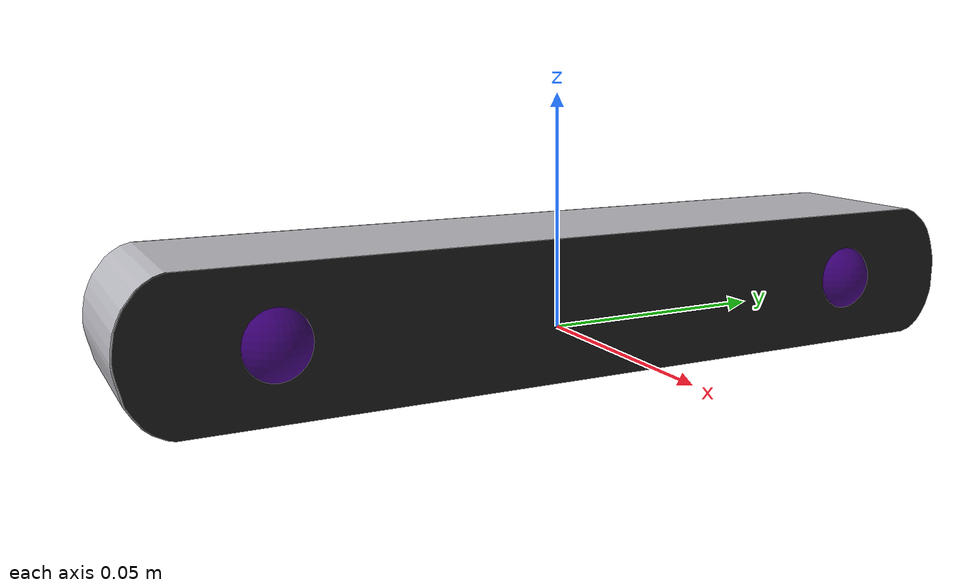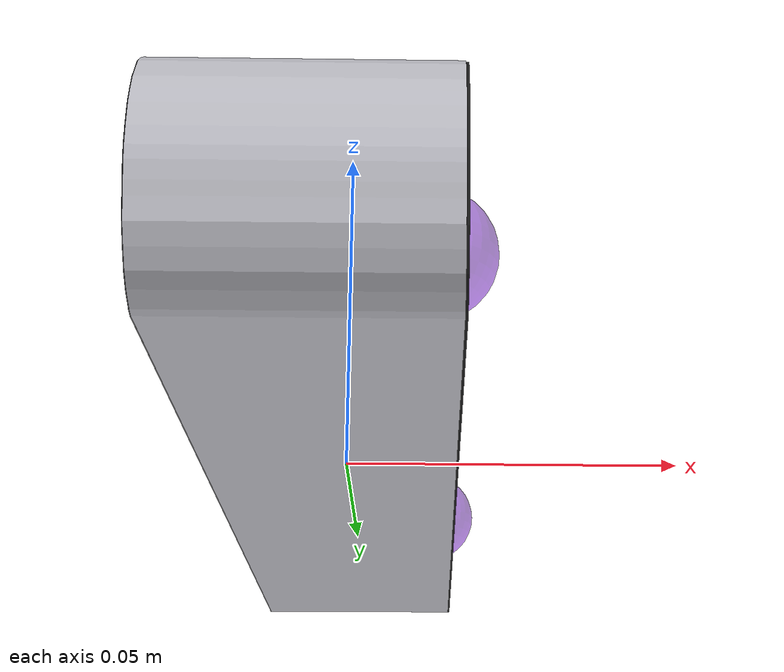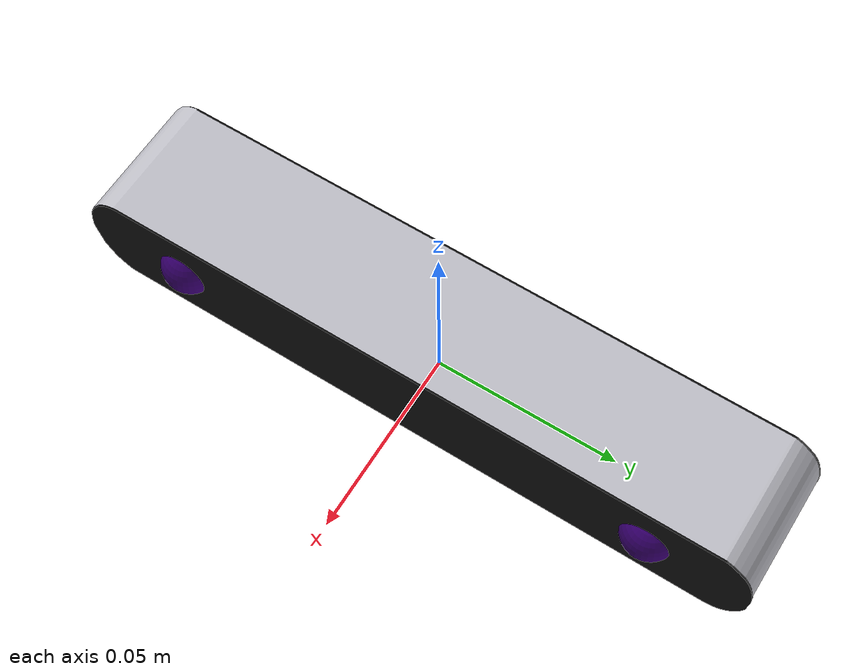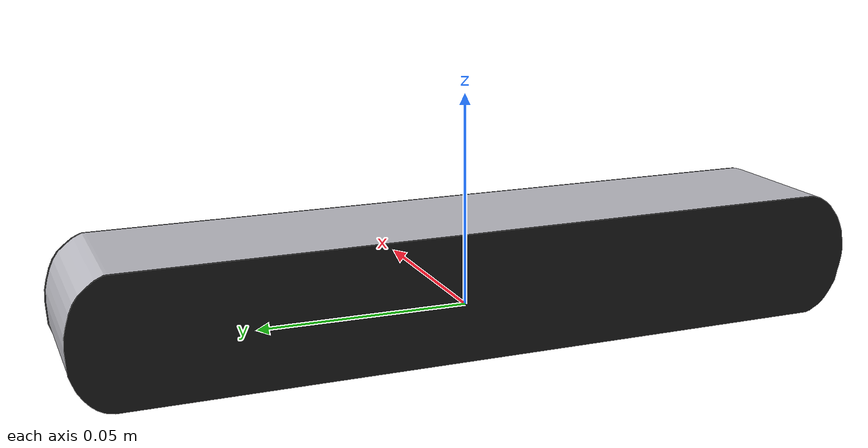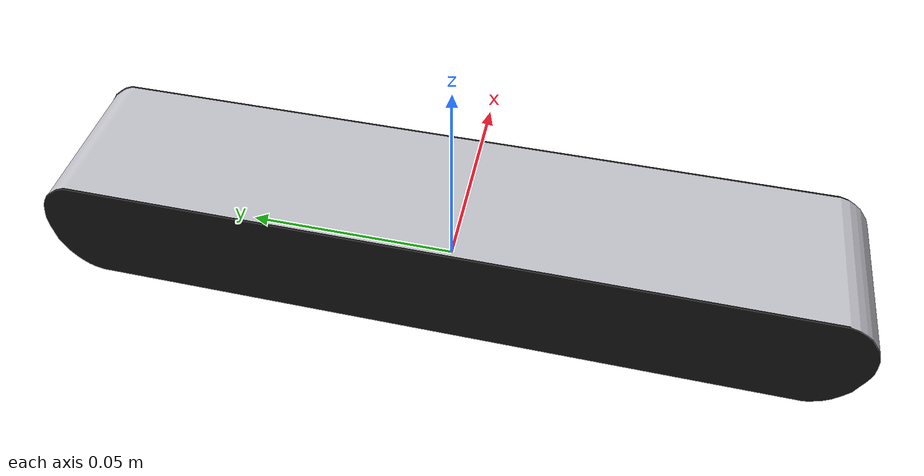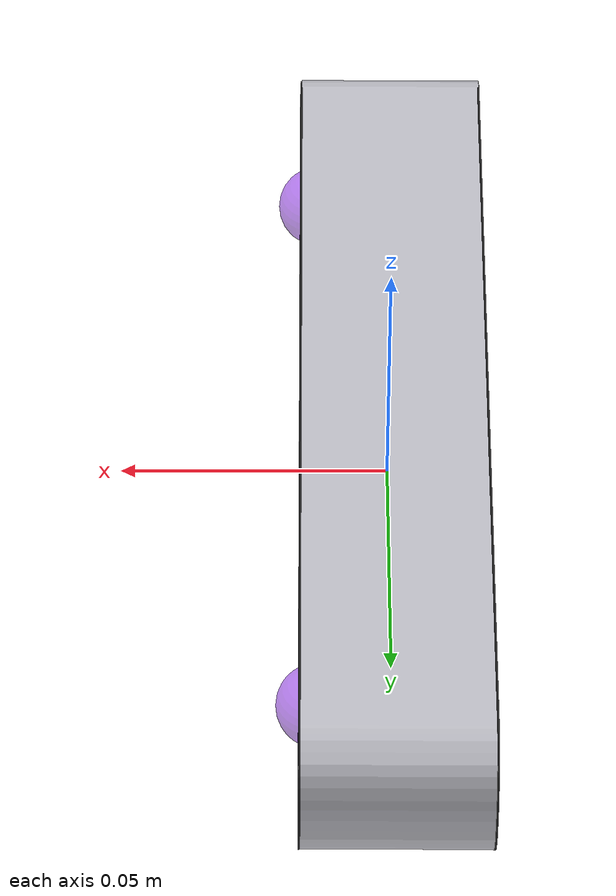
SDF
<?xml version='1.0'?>
<sdf version='1.5'>
  <model name='Zed_dummy'>
  <pose>0 0 0.008247 -1.57 0 -1.57</pose>
    <link name='frame'>
<inertial>
 	 <mass>0.342</mass>
	   <inertia>
	     <ixx>0.000056687</ixx>
	     <iyy>0.00089846</iyy>
	     <izz>0.00090385</izz>
    	     <ixy>0</ixy>
	     <ixz>0</ixz>
	     <iyz>0</iyz>
	   </inertia>
</inertial>
	<pose frame=''>0 0.008 -0.018575 0 -0 0</pose>
      <visual name='visual'>
         <geometry>
          <mesh>
            <uri>model://Zed_dummy/meshes/frame.dae</uri>
            <scale>1 1 1</scale>
          </mesh>
        </geometry>
     <material>
          <script>
            <uri>model://Zed_dummy/materials/scripts</uri>
            <uri>model://Zed_dummy/materials/textures</uri>
            <name>silver_zed</name>
          </script>
        </material>
        <cast_shadows>1</cast_shadows>
        <transparency>0</transparency>
      </visual>

      <collision name='collision'>
	<pose frame=''>0 -0.008 0.017575 0 -0 0</pose>
       	  <geometry>
	    <box>
	      <size> 0.175 0.029 0.035 </size>
	    </box>
	  </geometry>
       </collision>
    </link>

    <link name='lenses'>
      <pose frame=''>0 0.008 -0.018575 0 -0 0</pose>
 	<inertial>
	<pose frame=''>0 -0.005 0.015 0 -0 0</pose>
	  <mass>0.00001</mass>
	   <inertia>
	     <ixx>0</ixx>
	     <iyy>0</iyy>
	     <izz>0</izz>
    	     <ixy>0</ixy>
	     <ixz>0</ixz>
	     <iyz>0</iyz>
	   </inertia>
	</inertial>
        <visual name='visual'>
              <geometry>
          <mesh>
            <uri>model://Zed_dummy/meshes/lenses.dae</uri>
            <scale>1 1 1</scale>
          </mesh>
        </geometry>
             <material>
          <lighting>1</lighting>
            <ambient>0.25 0 0.5 1</ambient>
          <diffuse>0.45 0 0.9 1</diffuse>
          <specular>0.01 0.01 0.01 1</specular>
          <emissive>0 0 0 1</emissive>
        </material>
        <cast_shadows>1</cast_shadows>
        <transparency>0.5</transparency>
      </visual>
      <collision name='collision'>
        <geometry>
    	 <box>
	      <size> 0.0001 0.0001 0.0001 </size>
	    </box>
        </geometry>
       </collision>

    </link>
    <link name='panel_up'>
     <pose frame=''>0 0.008 0.035727 0 -0 0</pose>
      <inertial>
	<pose frame=''>0 -0.005 -0.02 0 -0 0</pose>
	  <mass>0.00001</mass>
	   <inertia>
	     <ixx>0.0</ixx>
	     <iyy>0.0</iyy>
	     <izz>0.00</izz>
    	     <ixy>0</ixy>
	     <ixz>0</ixz>
	     <iyz>0</iyz>
	   </inertia>
	</inertial>
         <visual name='visual'>
         <geometry>
          <mesh>
            <uri>model://Zed_dummy/meshes/panel.dae</uri>
            <scale>1 1 1</scale>
          </mesh>
        </geometry>
         <material>
          <lighting>1</lighting>
          <ambient>0 0 0 1</ambient>
          <diffuse>0.1 0.1 0.1 1</diffuse>
          <specular>0.01 0.01 0.01 1</specular>
          <emissive>0 0 0 1</emissive>
          <shader type='vertex'>
            <normal_map>__default__</normal_map>
          </shader>
        </material>
        <cast_shadows>1</cast_shadows>
        <transparency>0</transparency>
      </visual>
      <collision name='collision'>

        <geometry>
           <box>
	     <size> 0.0001 0.0001 0.0001 </size>
	    </box>
        </geometry>
       </collision>
    </link>

    <link name='panel_down'>
 	<pose frame=''>0 0.008 0.001099 0 -0 0</pose>
      <inertial>
<pose frame=''>0 -0.005 -0.02 0 -0 0</pose>
         <mass>0.00001</mass>
	   <inertia>
	     <ixx>0</ixx>
	     <iyy>0</iyy>
	     <izz>0</izz>
    	     <ixy>0</ixy>
	     <ixz>0</ixz>
	     <iyz>0</iyz>
	   </inertia>
	</inertial>
        <visual name='visual'>
        <geometry>
          <mesh>
            <uri>model://Zed_dummy/meshes/panel.dae</uri>
            <scale>1 1 1</scale>
          </mesh>
        </geometry>
        <material>
          <lighting>1</lighting>
          <ambient>0 0 0 1</ambient>
          <diffuse>0.1 0.1 0.1 1</diffuse>
          <specular>0.01 0.01 0.01 1</specular>
          <emissive>0 0 0 1</emissive>
          <shader type='vertex'>
            <normal_map>__default__</normal_map>
          </shader>
        </material>
        <cast_shadows>1</cast_shadows>
        <transparency>0</transparency>
      </visual>
      <collision name='collision'>

        <geometry>
          <box>
	       <size> 0.0001 0.0001 0.0001 </size>
	    </box>
        </geometry>
       </collision>
    </link>

     <joint type="fixed" name="lenses_joint_left">
      <pose>-0.06 0 0.015 0 0 0</pose>
      <child>lenses</child>
      <parent>frame</parent>
      <axis>
        <xyz>0 0 1</xyz>
         <use_parent_model_frame>true</use_parent_model_frame>
      </axis>
     </joint>

     <joint type="fixed" name="lenses_joint_right">
      <pose> 0.06 0 0.015 0 0 0</pose>
      <child>lenses</child>
      <parent>frame</parent>
      <axis>
        <xyz>0 0 1</xyz>
         <use_parent_model_frame>true</use_parent_model_frame>
      </axis>
     </joint>

    <joint type="fixed" name="panel_up_left">
      <pose>0.06 0 -0.015 0 0 0</pose>
      <child>panel_up</child>
      <parent>frame</parent>
      <axis>
        <xyz>0 0 1</xyz>
         <use_parent_model_frame>true</use_parent_model_frame>
      </axis>
     </joint>

    <joint type="fixed" name="panel_up_right">
      <pose>-0.06 0 -0.015 0 0 0</pose>
      <child>panel_up</child>
      <parent>frame</parent>
      <axis>
        <xyz>0 0 1</xyz>
         <use_parent_model_frame>true</use_parent_model_frame>
      </axis>
     </joint>

    <joint type="fixed" name="panel_down_left">
     <pose>-0.06 0 0 0 0 0</pose>
      <child>panel_down</child>
      <parent>frame</parent>
      <axis>
        <xyz>0 0 1</xyz>
         <use_parent_model_frame>true</use_parent_model_frame>
      </axis>
     </joint>

    <joint type="fixed" name="panel_down_right">
     <pose>0.06 0 0 0 0 0</pose>
      <child>panel_down</child>
      <parent>frame</parent>
      <axis>
        <xyz>0 0 1</xyz>
         <use_parent_model_frame>true</use_parent_model_frame>
      </axis>
     </joint>
    <static>1</static>
    <allow_auto_disable>1</allow_auto_disable>
  </model>
</sdf>
